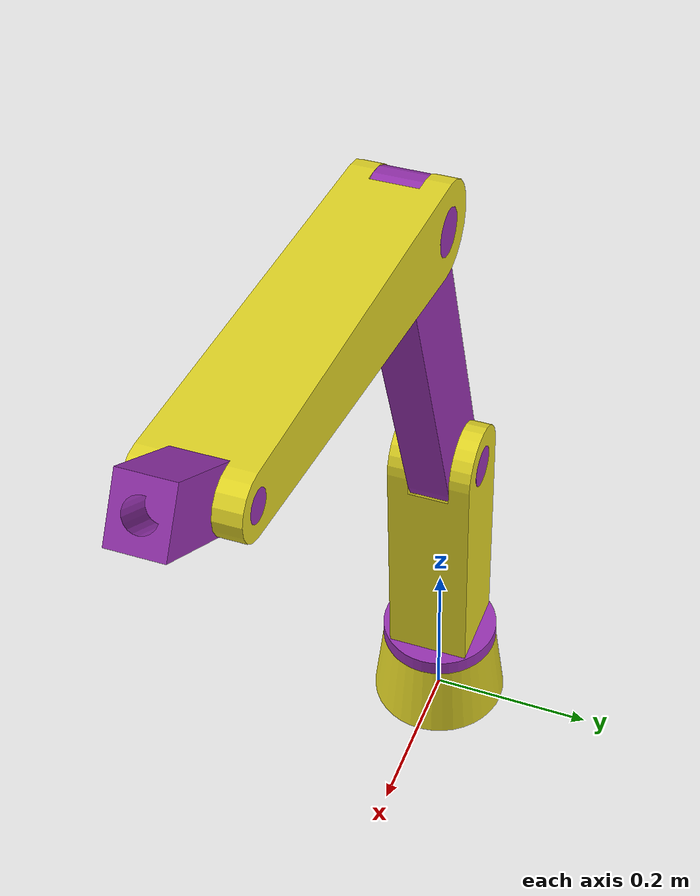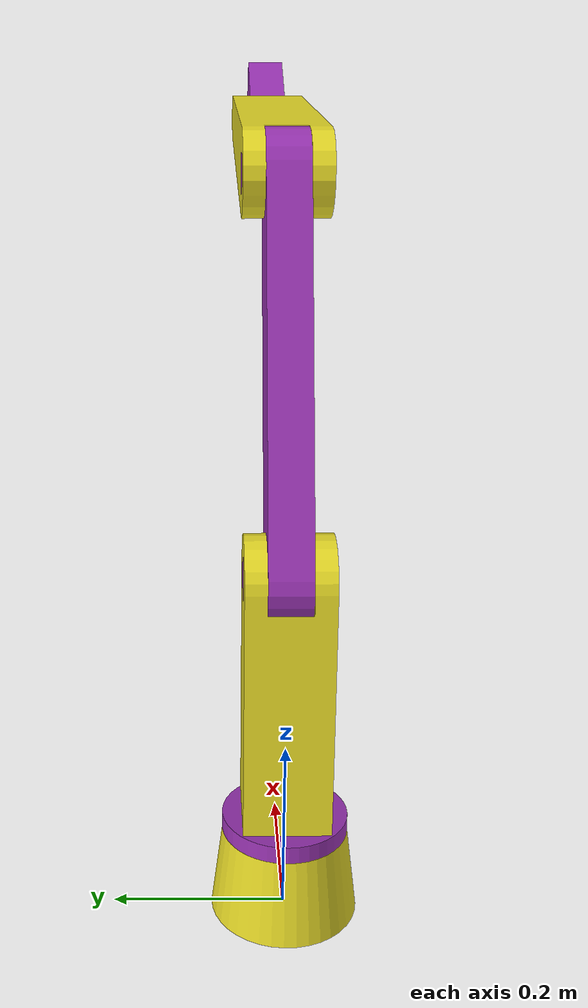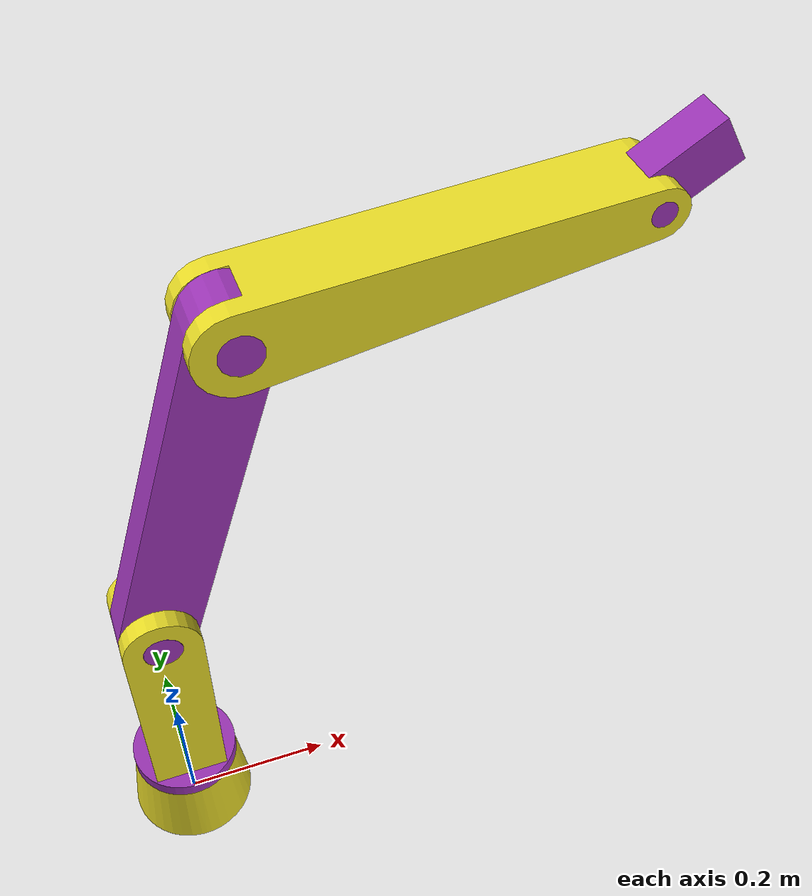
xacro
<?xml version="1.0"?>
<robot name="manipulator" xmlns:xacro="https://www.ros.org/wiki/xacro">

  <xacro:macro name="visual_and_collision_origin">
    <origin xyz="0 0 0" rpy="0 0 0"/>
  </xacro:macro>

  <xacro:macro name="visual_and_collision_geometry" params="link_name">
    <geometry>
      <mesh filename="package://flip1_description/meshes/${link_name}.STL"/>
    </geometry>
  </xacro:macro>

  <xacro:macro name="visual_and_collision_for_link" params="material_name  gen_link_name">
    <visual>
      <xacro:visual_and_collision_origin/>
      <xacro:visual_and_collision_geometry link_name="${gen_link_name}"/>
      <material name="${material_name}"/>
    </visual>
    <collision>
      <xacro:visual_and_collision_origin/>
      <xacro:visual_and_collision_geometry link_name="${gen_link_name}"/>
    </collision>
  </xacro:macro>

  <xacro:macro name="link_tag" params="link material mass *inertial_origin **interia_matrix">
    <link name="${link}">
      <xacro:visual_and_collision_for_link material_name="${material}" gen_link_name="${link}"/>
      <inertial>
        <mass value="${mass}"/>
        <xacro:insert_block name="inertial_origin"/>
        <xacro:insert_block name="interia_matrix"/>
      </inertial>
    </link>
  </xacro:macro>

  <xacro:link_tag link="base_link_arm" material="yellow" mass="1.7952">
    <origin xyz="1.2496E-07 -9.7714E-07 0.043629" rpy="0 0 0"/>
    <inertial_matrix>
      <inertia
        ixx="0.0042607" ixy="-2.5643E-08" ixz="-1.5443E-08"
        iyy="0.0042606" iyz="-1.6265E-08" izz="0.0059208"/>
    </inertial_matrix>
  </xacro:link_tag>

  <xacro:link_tag link="rotation_link" material="purple" mass="0.38734">
    <origin xyz="0 6.9389E-18 0.020598" rpy="0 0 0"/>
    <inertial_matrix>
      <inertia
        ixx="0.00049033" ixy="3.134E-20" ixz="4.3688E-20"
        iyy="0.00049033" iyz="-8.0027E-22" izz="0.00089765" />
    </inertial_matrix>
  </xacro:link_tag>

  <xacro:link_tag link="vertical_link" material="yellow" mass="2.8683">
    <origin xyz="0 0 0.14648" rpy="0 0 0"/>
    <inertial_matrix>
      <inertia
        ixx="0.024919" ixy="2.0329E-19" ixz="1.5006E-18"
        iyy="0.024772" iyz="2.04E-19" izz="0.0050439" />
    </inertial_matrix>
  </xacro:link_tag>

  <xacro:link_tag link="middle_arm_link" material="purple" mass="2.839">
    <origin xyz="5.5511E-17 -1.3878E-17 0.225" rpy="0 0 0"/>
    <inertial_matrix>
      <inertia
        ixx="0.072652" ixy="-5.421E-20" ixz="-7.9676E-19"
        iyy="0.073967" iyz="9.8764E-19" izz="0.002988" />
    </inertial_matrix>
  </xacro:link_tag>

  <xacro:link_tag link="end_link" material="yellow" mass="3.4568">
    <origin xyz="1.1102E-16 6.9389E-18 0.20744" rpy="0 0 0"/>
    <inertial_matrix>
      <inertia
        ixx="0.060655" ixy="7.1828E-19" ixz="4.0707E-18"
        iyy="0.059517" iyz="-2.6631E-18" izz="0.0051642" />
    </inertial_matrix>
  </xacro:link_tag>

  <xacro:link_tag link="gripper_holder_link" material="purple" mass="0.37775">
    <origin xyz="0 0 0.031338" rpy="0 0 0"/>
    <inertial_matrix>
      <inertia
        ixx="0.00058936" ixy="8.8938E-21" ixz="1.7754E-19" iyy="0.00056849"
        iyz="2.9434E-20" izz="0.00023348" />
    </inertial_matrix>
  </xacro:link_tag>

  <joint name="base_rotation_joint" type="revolute">
    <origin xyz="0 0 0.08" rpy="0 0 0.007562" />
    <parent link="base_link_arm" />
    <child link="rotation_link" />
    <axis xyz="0 0 -1" />
    <limit
      lower="-1.62"
      upper="0"
      effort="25"
      velocity="1" />
  </joint>

  <joint name="rotation_vertical_joint" type="fixed">
    <origin xyz="0 0 0.03" rpy="0 0 0" />
    <parent link="rotation_link" />
    <child link="vertical_link" />
  </joint>

  <joint name="vertical_middle_arm_joint" type="revolute">
    <origin xyz="0 0 0.3" rpy="0 0.31039 0" />
    <parent link="vertical_link" />
    <child link="middle_arm_link" />
    <axis xyz="0 -1 0" />
    <limit
      lower="-0.85"
      upper="0.33"
      effort="25"
      velocity="1" />
  </joint>

  <joint name="middle_end_joint" type="revolute">
    <origin xyz="0 0 0.45" rpy="0 1.1326 0" />
    <parent link="middle_arm_link" />
    <child link="end_link" />
    <axis xyz="0 1 0" />
    <limit
      lower="-2.0"
      upper="0.4"
      effort="25"
      velocity="1" />
  </joint>

  <joint name="gripper_holder_joint" type="revolute">
    <origin xyz="0 0 0.45" rpy="0 -0.43859 0" />
    <parent link="end_link" />
    <child link="gripper_holder_link" />
    <axis xyz="0 -1 0" />
    <limit
      lower="-3.0"
      upper="0.3"
      effort="25"
      velocity="1" />
  </joint>

</robot>
